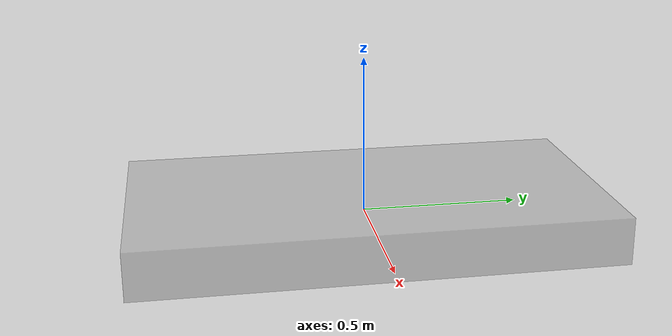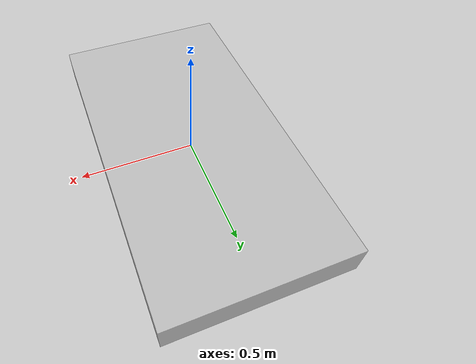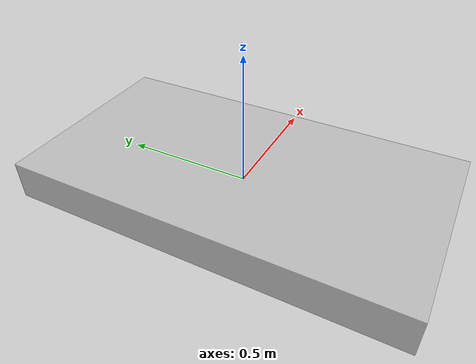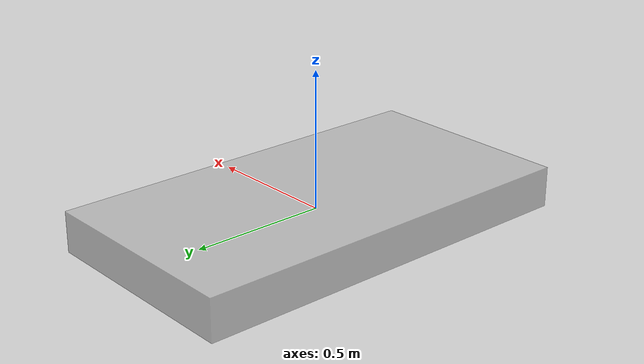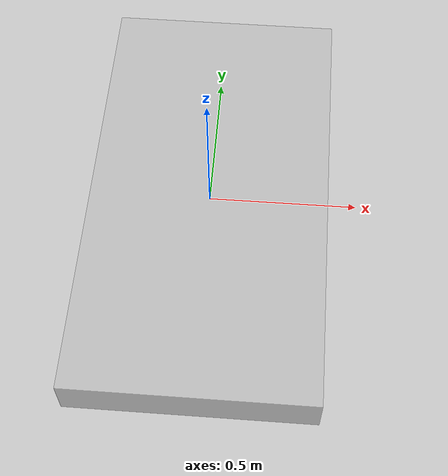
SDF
<?xml version='1.0'?>
<sdf version='1.6'>
  <model name='table_tile_env_new'>
    <link name='link'>
      <visual name='visual'>
        <geometry>
          <box>
            <size>0.8 1.5 0.15</size>
          </box>
        </geometry>
        <transparency>0.3</transparency>
      </visual>
      <collision name='collision'>
        <geometry>
          <box>
            <size>0.8 1.5 0.15</size>
          </box>
        </geometry>
        <surface>
          <ode>
            <mu>0.4</mu>
            <mu2>0.4</mu2>
            <slip1>1000000</slip1>
            <slip2>1000000</slip2>
          </ode>
          <torsional>
            <coefficient>0</coefficient>
          </torsional>
        </surface>
      </collision>
    </link>
    <static>1</static>
  </model>
</sdf>
